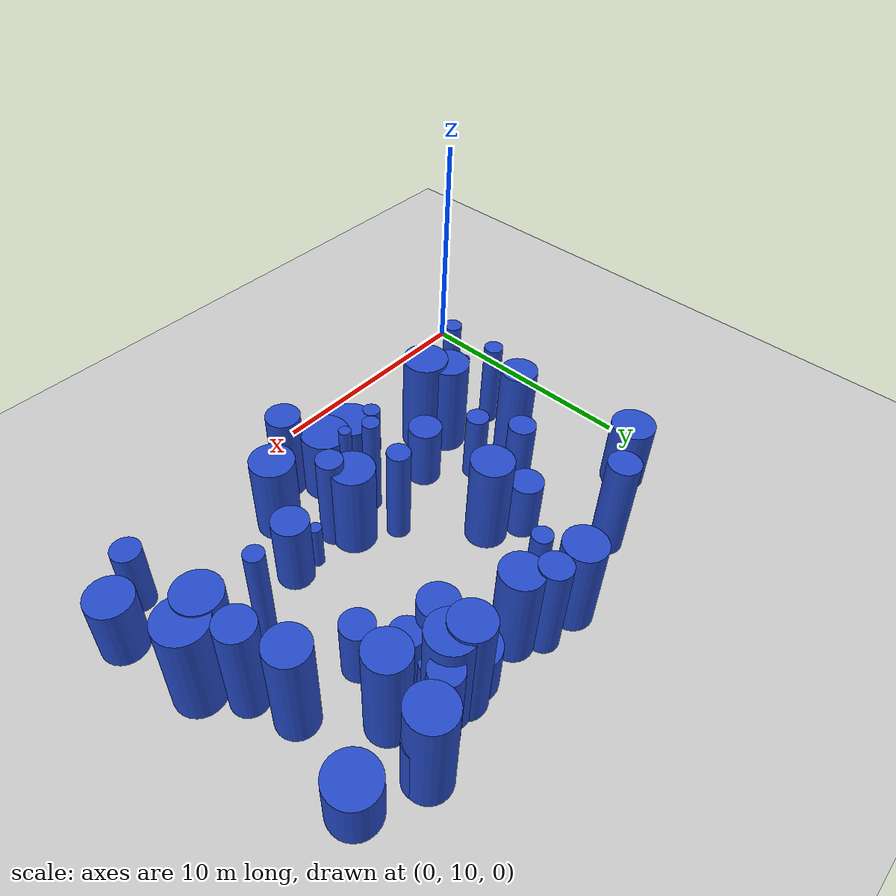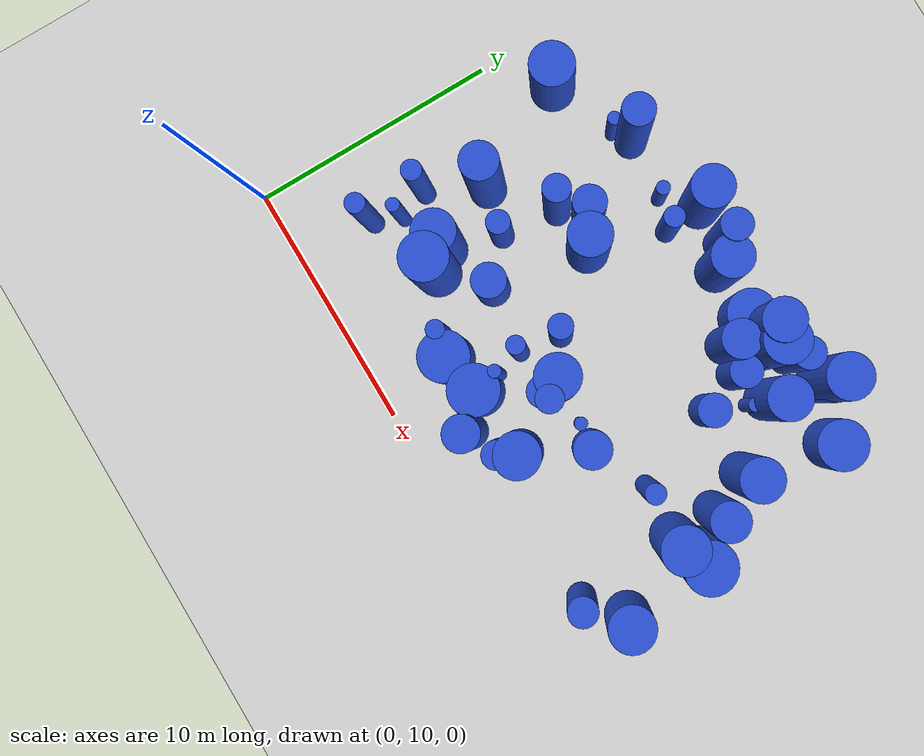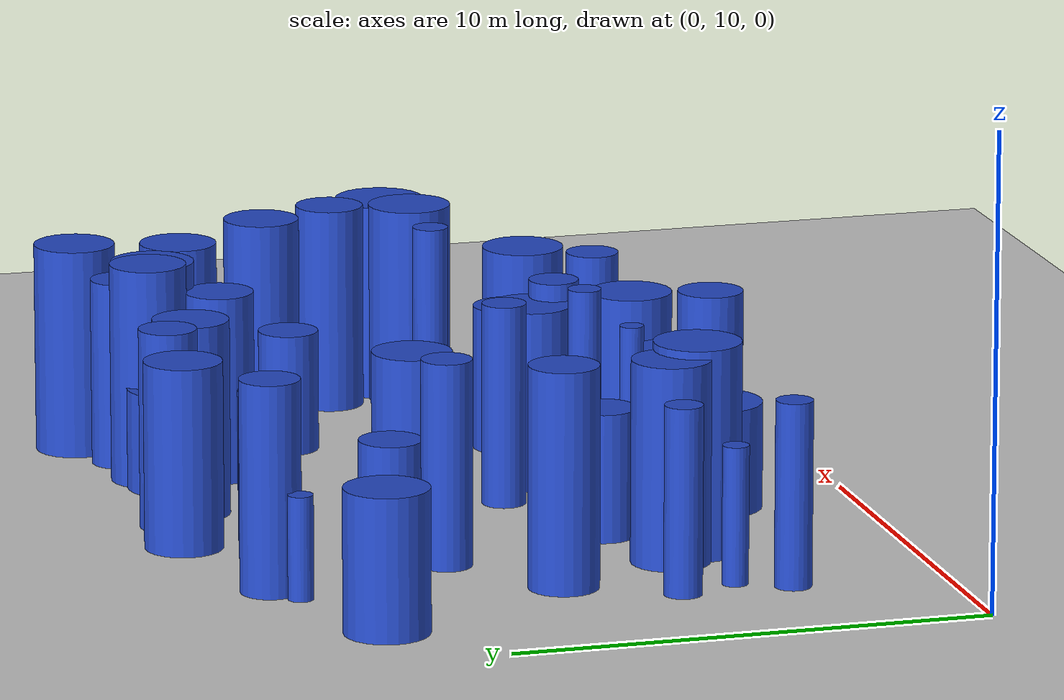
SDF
<sdf version="1.6">
 <world name="default">
  <model name="ground_plane">
   <static>1</static>
   <link name="link">
    <collision name="collision">
     <geometry><plane><normal>0 0 1</normal><size>100 100</size></plane></geometry>
     <surface><friction><ode><mu>100</mu><mu2>50</mu2></ode></friction></surface>
    </collision>
    <visual name="visual">
     <cast_shadows>0</cast_shadows>
     <geometry><plane><normal>0 0 1</normal><size>100 100</size></plane></geometry>
     <material>
      <script><uri>file://media/materials/scripts/gazebo.material</uri><name>Gazebo/Grey</name></script>
     </material>
    </visual>
   </link>
  </model>
  <model name="14">
   <static>0</static>
   <link name="link">
    <inertial>
     <mass>2</mass>
     <inertia>
      <ixx>0.836303</ixx>
      <ixy>0</ixy>
      <ixz>0</ixz>
      <iyy>0.836303</iyy>
      <iyz>0</iyz>
      <izz>0.0702342</izz>
     </inertia>
    </inertial>
    <collision name="collision">
     <geometry><cylinder><length>2.19251</length><radius>0.265017</radius></cylinder></geometry>
     <surface><contact><collide_without_contact>1</collide_without_contact></contact></surface>
    </collision>
    <visual name="visual">
     <geometry><cylinder><length>2.19251</length><radius>0.265017</radius></cylinder></geometry>
     <material>
      <script><uri>file://media/materials/scripts/gazebo.material</uri><name>Gazebo/Blue</name></script>
     </material>
    </visual>
    <gravity>0</gravity>
   </link>
   <pose>4.90241 23.0543 1.09626 0 -0 0</pose>
  </model>
  <model name="32">
   <static>0</static>
   <link name="link">
    <inertial>
     <mass>2</mass>
     <inertia><ixx>3.14804</ixx><ixy>0</ixy><ixz>0</ixz><iyy>3.14804</iyy><iyz>0</iyz><izz>0.2772</izz></inertia>
    </inertial>
    <collision name="collision">
     <geometry><cylinder><length>4.24931</length><radius>0.526498</radius></cylinder></geometry>
     <surface><contact><collide_without_contact>1</collide_without_contact></contact></surface>
    </collision>
    <visual name="visual">
     <geometry><cylinder><length>4.24931</length><radius>0.526498</radius></cylinder></geometry>
     <material>
      <script><uri>file://media/materials/scripts/gazebo.material</uri><name>Gazebo/Blue</name></script>
     </material>
    </visual>
    <gravity>0</gravity>
   </link>
   <pose>12.684 15.5314 2.12466 0 -0 0</pose>
  </model>
  <model name="58">
   <static>0</static>
   <link name="link">
    <inertial>
     <mass>2</mass>
     <inertia><ixx>1.90136</ixx><ixy>0</ixy><ixz>0</ixz><iyy>1.90136</iyy><iyz>0</iyz><izz>0.784577</izz></inertia>
    </inertial>
    <collision name="collision">
     <geometry><cylinder><length>3.00905</length><radius>0.885763</radius></cylinder></geometry>
     <surface><contact><collide_without_contact>1</collide_without_contact></contact></surface>
    </collision>
    <visual name="visual">
     <geometry><cylinder><length>3.00905</length><radius>0.885763</radius></cylinder></geometry>
     <material>
      <script><uri>file://media/materials/scripts/gazebo.material</uri><name>Gazebo/Blue</name></script>
     </material>
    </visual>
    <gravity>0</gravity>
   </link>
   <pose>2.14865 21.9876 1.50453 0 -0 0</pose>
  </model>
  <model name="60">
   <static>0</static>
   <link name="link">
    <inertial>
     <mass>2</mass>
     <inertia><ixx>2.88942</ixx><ixy>0</ixy><ixz>0</ixz><iyy>2.88942</iyy><iyz>0</iyz><izz>0.374804</izz></inertia>
    </inertial>
    <collision name="collision">
     <geometry><cylinder><length>4.02643</length><radius>0.612213</radius></cylinder></geometry>
     <surface><contact><collide_without_contact>1</collide_without_contact></contact></surface>
    </collision>
    <visual name="visual">
     <geometry><cylinder><length>4.02643</length><radius>0.612213</radius></cylinder></geometry>
     <material>
      <script><uri>file://media/materials/scripts/gazebo.material</uri><name>Gazebo/Blue</name></script>
     </material>
    </visual>
    <gravity>0</gravity>
   </link>
   <pose>16.028 24.169 2.01321 0 -0 0</pose>
  </model>
  <model name="69">
   <static>0</static>
   <link name="link">
    <inertial>
     <mass>2</mass>
     <inertia><ixx>3.22963</ixx><ixy>0</ixy><ixz>0</ixz><iyy>3.22963</iyy><iyz>0</iyz><izz>0.217421</izz></inertia>
    </inertial>
    <collision name="collision">
     <geometry><cylinder><length>4.3273</length><radius>0.466285</radius></cylinder></geometry>
     <surface><contact><collide_without_contact>1</collide_without_contact></contact></surface>
    </collision>
    <visual name="visual">
     <geometry><cylinder><length>4.3273</length><radius>0.466285</radius></cylinder></geometry>
     <material>
      <script><uri>file://media/materials/scripts/gazebo.material</uri><name>Gazebo/Blue</name></script>
     </material>
    </visual>
    <gravity>0</gravity>
   </link>
   <pose>10.7285 17.1635 2.16365 0 -0 0</pose>
  </model>
  <model name="83">
   <static>0</static>
   <link name="link">
    <inertial>
     <mass>2</mass>
     <inertia><ixx>3.76364</ixx><ixy>0</ixy><ixz>0</ixz><iyy>3.76364</iyy><iyz>0</iyz><izz>0.745798</izz></inertia>
    </inertial>
    <collision name="collision">
     <geometry><cylinder><length>4.51048</length><radius>0.863596</radius></cylinder></geometry>
     <surface><contact><collide_without_contact>1</collide_without_contact></contact></surface>
    </collision>
    <visual name="visual">
     <geometry><cylinder><length>4.51048</length><radius>0.863596</radius></cylinder></geometry>
     <material>
      <script><uri>file://media/materials/scripts/gazebo.material</uri><name>Gazebo/Blue</name></script>
     </material>
    </visual>
    <gravity>0</gravity>
   </link>
   <pose>17.4087 24.8194 2.25524 0 -0 0</pose>
  </model>
  <model name="86">
   <static>0</static>
   <link name="link">
    <inertial>
     <mass>2</mass>
     <inertia><ixx>1.70084</ixx><ixy>0</ixy><ixz>0</ixz><iyy>1.70084</iyy><iyz>0</iyz><izz>0.217344</izz></inertia>
    </inertial>
    <collision name="collision">
     <geometry><cylinder><length>3.09079</length><radius>0.466202</radius></cylinder></geometry>
     <surface><contact><collide_without_contact>1</collide_without_contact></contact></surface>
    </collision>
    <visual name="visual">
     <geometry><cylinder><length>3.09079</length><radius>0.466202</radius></cylinder></geometry>
     <material>
      <script><uri>file://media/materials/scripts/gazebo.material</uri><name>Gazebo/Blue</name></script>
     </material>
    </visual>
    <gravity>0</gravity>
   </link>
   <pose>6.19283 17.2437 1.5454 0 -0 0</pose>
  </model>
  <model name="88">
   <static>0</static>
   <link name="link">
    <inertial>
     <mass>2</mass>
     <inertia><ixx>2.97237</ixx><ixy>0</ixy><ixz>0</ixz><iyy>2.97237</iyy><iyz>0</iyz><izz>0.674588</izz></inertia>
    </inertial>
    <collision name="collision">
     <geometry><cylinder><length>3.97624</length><radius>0.821333</radius></cylinder></geometry>
     <surface><contact><collide_without_contact>1</collide_without_contact></contact></surface>
    </collision>
    <visual name="visual">
     <geometry><cylinder><length>3.97624</length><radius>0.821333</radius></cylinder></geometry>
     <material>
      <script><uri>file://media/materials/scripts/gazebo.material</uri><name>Gazebo/Blue</name></script>
     </material>
    </visual>
    <gravity>0</gravity>
   </link>
   <pose>9.23452 24.4216 1.98812 0 -0 0</pose>
  </model>
  <model name="108">
   <static>0</static>
   <link name="link">
    <inertial>
     <mass>2</mass>
     <inertia><ixx>2.89097</ixx><ixy>0</ixy><ixz>0</ixz><iyy>2.89097</iyy><iyz>0</iyz><izz>0.769265</izz></inertia>
    </inertial>
    <collision name="collision">
     <geometry><cylinder><length>3.87789</length><radius>0.877078</radius></cylinder></geometry>
     <surface><contact><collide_without_contact>1</collide_without_contact></contact></surface>
    </collision>
    <visual name="visual">
     <geometry><cylinder><length>3.87789</length><radius>0.877078</radius></cylinder></geometry>
     <material>
      <script><uri>file://media/materials/scripts/gazebo.material</uri><name>Gazebo/Blue</name></script>
     </material>
    </visual>
    <gravity>0</gravity>
   </link>
   <pose>12.1664 16.1752 1.93895 0 -0 0</pose>
  </model>
  <model name="111">
   <static>0</static>
   <link name="link">
    <inertial>
     <mass>2</mass>
     <inertia><ixx>1.61305</ixx><ixy>0</ixy><ixz>0</ixz><iyy>1.61305</iyy><iyz>0</iyz><izz>0.331208</izz></inertia>
    </inertial>
    <collision name="collision">
     <geometry><cylinder><length>2.94697</length><radius>0.575506</radius></cylinder></geometry>
     <surface><contact><collide_without_contact>1</collide_without_contact></contact></surface>
    </collision>
    <visual name="visual">
     <geometry><cylinder><length>2.94697</length><radius>0.575506</radius></cylinder></geometry>
     <material>
      <script><uri>file://media/materials/scripts/gazebo.material</uri><name>Gazebo/Blue</name></script>
     </material>
    </visual>
    <gravity>0</gravity>
   </link>
   <pose>19.7444 12.6258 1.47349 0 -0 0</pose>
  </model>
  <model name="121">
   <static>0</static>
   <link name="link">
    <inertial>
     <mass>2</mass>
     <inertia>
      <ixx>0.701249</ixx>
      <ixy>0</ixy>
      <ixz>0</ixz>
      <iyy>0.701249</iyy>
      <iyz>0</iyz>
      <izz>0.0646593</izz>
     </inertia>
    </inertial>
    <collision name="collision">
     <geometry><cylinder><length>2.00338</length><radius>0.254282</radius></cylinder></geometry>
     <surface><contact><collide_without_contact>1</collide_without_contact></contact></surface>
    </collision>
    <visual name="visual">
     <geometry><cylinder><length>2.00338</length><radius>0.254282</radius></cylinder></geometry>
     <material>
      <script><uri>file://media/materials/scripts/gazebo.material</uri><name>Gazebo/Blue</name></script>
     </material>
    </visual>
    <gravity>0</gravity>
   </link>
   <pose>14.0322 16.041 1.00169 0 -0 0</pose>
  </model>
  <model name="143">
   <static>0</static>
   <link name="link">
    <inertial>
     <mass>2</mass>
     <inertia><ixx>2.80765</ixx><ixy>0</ixy><ixz>0</ixz><iyy>2.80765</iyy><iyz>0</iyz><izz>0.487148</izz></inertia>
    </inertial>
    <collision name="collision">
     <geometry><cylinder><length>3.9223</length><radius>0.69796</radius></cylinder></geometry>
     <surface><contact><collide_without_contact>1</collide_without_contact></contact></surface>
    </collision>
    <visual name="visual">
     <geometry><cylinder><length>3.9223</length><radius>0.69796</radius></cylinder></geometry>
     <material>
      <script><uri>file://media/materials/scripts/gazebo.material</uri><name>Gazebo/Blue</name></script>
     </material>
    </visual>
    <gravity>0</gravity>
   </link>
   <pose>12.1102 12.2397 1.96115 0 -0 0</pose>
  </model>
  <model name="150">
   <static>0</static>
   <link name="link">
    <inertial>
     <mass>2</mass>
     <inertia><ixx>3.53297</ixx><ixy>0</ixy><ixz>0</ixz><iyy>3.53297</iyy><iyz>0</iyz><izz>0.946006</izz></inertia>
    </inertial>
    <collision name="collision">
     <geometry><cylinder><length>4.28484</length><radius>0.972629</radius></cylinder></geometry>
     <surface><contact><collide_without_contact>1</collide_without_contact></contact></surface>
    </collision>
    <visual name="visual">
     <geometry><cylinder><length>4.28484</length><radius>0.972629</radius></cylinder></geometry>
     <material>
      <script><uri>file://media/materials/scripts/gazebo.material</uri><name>Gazebo/Blue</name></script>
     </material>
    </visual>
    <gravity>0</gravity>
   </link>
   <pose>20.5094 17.2649 2.14242 0 -0 0</pose>
  </model>
  <model name="161">
   <static>0</static>
   <link name="link">
    <inertial>
     <mass>2</mass>
     <inertia><ixx>4.00763</ixx><ixy>0</ixy><ixz>0</ixz><iyy>4.00763</iyy><iyz>0</iyz><izz>0.65728</izz></inertia>
    </inertial>
    <collision name="collision">
     <geometry><cylinder><length>4.69829</length><radius>0.810728</radius></cylinder></geometry>
     <surface><contact><collide_without_contact>1</collide_without_contact></contact></surface>
    </collision>
    <visual name="visual">
     <geometry><cylinder><length>4.69829</length><radius>0.810728</radius></cylinder></geometry>
     <material>
      <script><uri>file://media/materials/scripts/gazebo.material</uri><name>Gazebo/Blue</name></script>
     </material>
    </visual>
    <gravity>0</gravity>
   </link>
   <pose>14.5574 23.8871 2.34915 0 -0 0</pose>
  </model>
  <model name="168">
   <static>0</static>
   <link name="link">
    <inertial>
     <mass>2</mass>
     <inertia><ixx>1.88036</ixx><ixy>0</ixy><ixz>0</ixz><iyy>1.88036</iyy><iyz>0</iyz><izz>0.387286</izz></inertia>
    </inertial>
    <collision name="collision">
     <geometry><cylinder><length>3.18124</length><radius>0.622323</radius></cylinder></geometry>
     <surface><contact><collide_without_contact>1</collide_without_contact></contact></surface>
    </collision>
    <visual name="visual">
     <geometry><cylinder><length>3.18124</length><radius>0.622323</radius></cylinder></geometry>
     <material>
      <script><uri>file://media/materials/scripts/gazebo.material</uri><name>Gazebo/Blue</name></script>
     </material>
    </visual>
    <gravity>0</gravity>
   </link>
   <pose>15.4862 22.0829 1.59062 0 -0 0</pose>
  </model>
  <model name="173">
   <static>0</static>
   <link name="link">
    <inertial>
     <mass>2</mass>
     <inertia><ixx>3.90189</ixx><ixy>0</ixy><ixz>0</ixz><iyy>3.90189</iyy><iyz>0</iyz><izz>0.540275</izz></inertia>
    </inertial>
    <collision name="collision">
     <geometry><cylinder><length>4.66803</length><radius>0.735034</radius></cylinder></geometry>
     <surface><contact><collide_without_contact>1</collide_without_contact></contact></surface>
    </collision>
    <visual name="visual">
     <geometry><cylinder><length>4.66803</length><radius>0.735034</radius></cylinder></geometry>
     <material>
      <script><uri>file://media/materials/scripts/gazebo.material</uri><name>Gazebo/Blue</name></script>
     </material>
    </visual>
    <gravity>0</gravity>
   </link>
   <pose>4.30772 17.7082 2.33402 0 -0 0</pose>
  </model>
  <model name="177">
   <static>0</static>
   <link name="link">
    <inertial>
     <mass>2</mass>
     <inertia><ixx>0.95271</ixx><ixy>0</ixy><ixz>0</ixz><iyy>0.95271</iyy><iyz>0</iyz><izz>0.135392</izz></inertia>
    </inertial>
    <collision name="collision">
     <geometry><cylinder><length>2.30436</length><radius>0.367956</radius></cylinder></geometry>
     <surface><contact><collide_without_contact>1</collide_without_contact></contact></surface>
    </collision>
    <visual name="visual">
     <geometry><cylinder><length>2.30436</length><radius>0.367956</radius></cylinder></geometry>
     <material>
      <script><uri>file://media/materials/scripts/gazebo.material</uri><name>Gazebo/Blue</name></script>
     </material>
    </visual>
    <gravity>0</gravity>
   </link>
   <pose>8.26384 13.2308 1.15218 0 -0 0</pose>
  </model>
  <model name="179">
   <static>0</static>
   <link name="link">
    <inertial>
     <mass>2</mass>
     <inertia><ixx>1.22891</ixx><ixy>0</ixy><ixz>0</ixz><iyy>1.22891</iyy><iyz>0</iyz><izz>0.890975</izz></inertia>
    </inertial>
    <collision name="collision">
     <geometry><cylinder><length>2.16807</length><radius>0.943915</radius></cylinder></geometry>
     <surface><contact><collide_without_contact>1</collide_without_contact></contact></surface>
    </collision>
    <visual name="visual">
     <geometry><cylinder><length>2.16807</length><radius>0.943915</radius></cylinder></geometry>
     <material>
      <script><uri>file://media/materials/scripts/gazebo.material</uri><name>Gazebo/Blue</name></script>
     </material>
    </visual>
    <gravity>0</gravity>
   </link>
   <pose>13.8206 23.5763 1.08403 0 -0 0</pose>
  </model>
  <model name="184">
   <static>0</static>
   <link name="link">
    <inertial>
     <mass>2</mass>
     <inertia><ixx>1.34764</ixx><ixy>0</ixy><ixz>0</ixz><iyy>1.34764</iyy><iyz>0</iyz><izz>0.412127</izz></inertia>
    </inertial>
    <collision name="collision">
     <geometry><cylinder><length>2.61714</length><radius>0.641971</radius></cylinder></geometry>
     <surface><contact><collide_without_contact>1</collide_without_contact></contact></surface>
    </collision>
    <visual name="visual">
     <geometry><cylinder><length>2.61714</length><radius>0.641971</radius></cylinder></geometry>
     <material>
      <script><uri>file://media/materials/scripts/gazebo.material</uri><name>Gazebo/Blue</name></script>
     </material>
    </visual>
    <gravity>0</gravity>
   </link>
   <pose>16.1297 20.4453 1.30857 0 -0 0</pose>
  </model>
  <model name="185">
   <static>0</static>
   <link name="link">
    <inertial>
     <mass>2</mass>
     <inertia><ixx>2.98915</ixx><ixy>0</ixy><ixz>0</ixz><iyy>2.98915</iyy><iyz>0</iyz><izz>0.538537</izz></inertia>
    </inertial>
    <collision name="collision">
     <geometry><cylinder><length>4.03971</length><radius>0.73385</radius></cylinder></geometry>
     <surface><contact><collide_without_contact>1</collide_without_contact></contact></surface>
    </collision>
    <visual name="visual">
     <geometry><cylinder><length>4.03971</length><radius>0.73385</radius></cylinder></geometry>
     <material>
      <script><uri>file://media/materials/scripts/gazebo.material</uri><name>Gazebo/Blue</name></script>
     </material>
    </visual>
    <gravity>0</gravity>
   </link>
   <pose>14.375 22.3936 2.01986 0 -0 0</pose>
  </model>
  <model name="189">
   <static>0</static>
   <link name="link">
    <inertial>
     <mass>2</mass>
     <inertia><ixx>2.52915</ixx><ixy>0</ixy><ixz>0</ixz><iyy>2.52915</iyy><iyz>0</iyz><izz>0.784996</izz></inertia>
    </inertial>
    <collision name="collision">
     <geometry><cylinder><length>3.58049</length><radius>0.886</radius></cylinder></geometry>
     <surface><contact><collide_without_contact>1</collide_without_contact></contact></surface>
    </collision>
    <visual name="visual">
     <geometry><cylinder><length>3.58049</length><radius>0.886</radius></cylinder></geometry>
     <material>
      <script><uri>file://media/materials/scripts/gazebo.material</uri><name>Gazebo/Blue</name></script>
     </material>
    </visual>
    <gravity>0</gravity>
   </link>
   <pose>13.7865 13.5097 1.79025 0 -0 0</pose>
  </model>
  <model name="194">
   <static>0</static>
   <link name="link">
    <inertial>
     <mass>2</mass>
     <inertia><ixx>3.51472</ixx><ixy>0</ixy><ixz>0</ixz><iyy>3.51472</iyy><iyz>0</iyz><izz>0.397602</izz></inertia>
    </inertial>
    <collision name="collision">
     <geometry><cylinder><length>4.46044</length><radius>0.630557</radius></cylinder></geometry>
     <surface><contact><collide_without_contact>1</collide_without_contact></contact></surface>
    </collision>
    <visual name="visual">
     <geometry><cylinder><length>4.46044</length><radius>0.630557</radius></cylinder></geometry>
     <material>
      <script><uri>file://media/materials/scripts/gazebo.material</uri><name>Gazebo/Blue</name></script>
     </material>
    </visual>
    <gravity>0</gravity>
   </link>
   <pose>5.59986 23.5037 2.23022 0 -0 0</pose>
  </model>
  <model name="210">
   <static>0</static>
   <link name="link">
    <inertial>
     <mass>2</mass>
     <inertia><ixx>1.78793</ixx><ixy>0</ixy><ixz>0</ixz><iyy>1.78793</iyy><iyz>0</iyz><izz>0.167015</izz></inertia>
    </inertial>
    <collision name="collision">
     <geometry><cylinder><length>3.1979</length><radius>0.408674</radius></cylinder></geometry>
     <surface><contact><collide_without_contact>1</collide_without_contact></contact></surface>
    </collision>
    <visual name="visual">
     <geometry><cylinder><length>3.1979</length><radius>0.408674</radius></cylinder></geometry>
     <material>
      <script><uri>file://media/materials/scripts/gazebo.material</uri><name>Gazebo/Blue</name></script>
     </material>
    </visual>
    <gravity>0</gravity>
   </link>
   <pose>9.36745 22.8219 1.59895 0 -0 0</pose>
  </model>
  <model name="218">
   <static>0</static>
   <link name="link">
    <inertial>
     <mass>2</mass>
     <inertia><ixx>3.32031</ixx><ixy>0</ixy><ixz>0</ixz><iyy>3.32031</iyy><iyz>0</iyz><izz>0.28159</izz></inertia>
    </inertial>
    <collision name="collision">
     <geometry><cylinder><length>4.36773</length><radius>0.530651</radius></cylinder></geometry>
     <surface><contact><collide_without_contact>1</collide_without_contact></contact></surface>
    </collision>
    <visual name="visual">
     <geometry><cylinder><length>4.36773</length><radius>0.530651</radius></cylinder></geometry>
     <material>
      <script><uri>file://media/materials/scripts/gazebo.material</uri><name>Gazebo/Blue</name></script>
     </material>
    </visual>
    <gravity>0</gravity>
   </link>
   <pose>6.48457 19.5668 2.18387 0 -0 0</pose>
  </model>
  <model name="232">
   <static>0</static>
   <link name="link">
    <inertial>
     <mass>2</mass>
     <inertia><ixx>3.41433</ixx><ixy>0</ixy><ixz>0</ixz><iyy>3.41433</iyy><iyz>0</iyz><izz>0.690269</izz></inertia>
    </inertial>
    <collision name="collision">
     <geometry><cylinder><length>4.29129</length><radius>0.830824</radius></cylinder></geometry>
     <surface><contact><collide_without_contact>1</collide_without_contact></contact></surface>
    </collision>
    <visual name="visual">
     <geometry><cylinder><length>4.29129</length><radius>0.830824</radius></cylinder></geometry>
     <material>
      <script><uri>file://media/materials/scripts/gazebo.material</uri><name>Gazebo/Blue</name></script>
     </material>
    </visual>
    <gravity>0</gravity>
   </link>
   <pose>5.53066 15.0773 2.14565 0 -0 0</pose>
  </model>
  <model name="236">
   <static>0</static>
   <link name="link">
    <inertial>
     <mass>2</mass>
     <inertia><ixx>3.5821</ixx><ixy>0</ixy><ixz>0</ixz><iyy>3.5821</iyy><iyz>0</iyz><izz>0.659814</izz></inertia>
    </inertial>
    <collision name="collision">
     <geometry><cylinder><length>4.41737</length><radius>0.812289</radius></cylinder></geometry>
     <surface><contact><collide_without_contact>1</collide_without_contact></contact></surface>
    </collision>
    <visual name="visual">
     <geometry><cylinder><length>4.41737</length><radius>0.812289</radius></cylinder></geometry>
     <material>
      <script><uri>file://media/materials/scripts/gazebo.material</uri><name>Gazebo/Blue</name></script>
     </material>
    </visual>
    <gravity>0</gravity>
   </link>
   <pose>18.8726 20.3437 2.20868 0 -0 0</pose>
  </model>
  <model name="239">
   <static>0</static>
   <link name="link">
    <inertial>
     <mass>2</mass>
     <inertia><ixx>2.08851</ixx><ixy>0</ixy><ixz>0</ixz><iyy>2.08851</iyy><iyz>0</iyz><izz>0.364489</izz></inertia>
    </inertial>
    <collision name="collision">
     <geometry><cylinder><length>3.38195</length><radius>0.603729</radius></cylinder></geometry>
     <surface><contact><collide_without_contact>1</collide_without_contact></contact></surface>
    </collision>
    <visual name="visual">
     <geometry><cylinder><length>3.38195</length><radius>0.603729</radius></cylinder></geometry>
     <material>
      <script><uri>file://media/materials/scripts/gazebo.material</uri><name>Gazebo/Blue</name></script>
     </material>
    </visual>
    <gravity>0</gravity>
   </link>
   <pose>12.3231 15.4519 1.69098 0 -0 0</pose>
  </model>
  <model name="240">
   <static>0</static>
   <link name="link">
    <inertial>
     <mass>2</mass>
     <inertia><ixx>1.48257</ixx><ixy>0</ixy><ixz>0</ixz><iyy>1.48257</iyy><iyz>0</iyz><izz>0.465862</izz></inertia>
    </inertial>
    <collision name="collision">
     <geometry><cylinder><length>2.73821</length><radius>0.682541</radius></cylinder></geometry>
     <surface><contact><collide_without_contact>1</collide_without_contact></contact></surface>
    </collision>
    <visual name="visual">
     <geometry><cylinder><length>2.73821</length><radius>0.682541</radius></cylinder></geometry>
     <material>
      <script><uri>file://media/materials/scripts/gazebo.material</uri><name>Gazebo/Blue</name></script>
     </material>
    </visual>
    <gravity>0</gravity>
   </link>
   <pose>7.79968 15.8538 1.36911 0 -0 0</pose>
  </model>
  <model name="241">
   <static>0</static>
   <link name="link">
    <inertial>
     <mass>2</mass>
     <inertia><ixx>3.19417</ixx><ixy>0</ixy><ixz>0</ixz><iyy>3.19417</iyy><iyz>0</iyz><izz>0.372242</izz></inertia>
    </inertial>
    <collision name="collision">
     <geometry><cylinder><length>4.24833</length><radius>0.610117</radius></cylinder></geometry>
     <surface><contact><collide_without_contact>1</collide_without_contact></contact></surface>
    </collision>
    <visual name="visual">
     <geometry><cylinder><length>4.24833</length><radius>0.610117</radius></cylinder></geometry>
     <material>
      <script><uri>file://media/materials/scripts/gazebo.material</uri><name>Gazebo/Blue</name></script>
     </material>
    </visual>
    <gravity>0</gravity>
   </link>
   <pose>10.8543 24.3498 2.12416 0 -0 0</pose>
  </model>
  <model name="242">
   <static>0</static>
   <link name="link">
    <inertial>
     <mass>2</mass>
     <inertia><ixx>3.55214</ixx><ixy>0</ixy><ixz>0</ixz><iyy>3.55214</iyy><iyz>0</iyz><izz>0.122529</izz></inertia>
    </inertial>
    <collision name="collision">
     <geometry><cylinder><length>4.5766</length><radius>0.350041</radius></cylinder></geometry>
     <surface><contact><collide_without_contact>1</collide_without_contact></contact></surface>
    </collision>
    <visual name="visual">
     <geometry><cylinder><length>4.5766</length><radius>0.350041</radius></cylinder></geometry>
     <material>
      <script><uri>file://media/materials/scripts/gazebo.material</uri><name>Gazebo/Blue</name></script>
     </material>
    </visual>
    <gravity>0</gravity>
   </link>
   <pose>10.4906 15.4859 2.2883 0 -0 0</pose>
  </model>
  <model name="251">
   <static>0</static>
   <link name="link">
    <inertial>
     <mass>2</mass>
     <inertia>
      <ixx>2.22055</ixx>
      <ixy>0</ixy>
      <ixz>0</ixz>
      <iyy>2.22055</iyy>
      <iyz>0</iyz>
      <izz>0.0647104</izz>
     </inertia>
    </inertial>
    <collision name="collision">
     <geometry><cylinder><length>3.62342</length><radius>0.254382</radius></cylinder></geometry>
     <surface><contact><collide_without_contact>1</collide_without_contact></contact></surface>
    </collision>
    <visual name="visual">
     <geometry><cylinder><length>3.62342</length><radius>0.254382</radius></cylinder></geometry>
     <material>
      <script><uri>file://media/materials/scripts/gazebo.material</uri><name>Gazebo/Blue</name></script>
     </material>
    </visual>
    <gravity>0</gravity>
   </link>
   <pose>10.815 14.3595 1.81171 0 -0 0</pose>
  </model>
  <model name="257">
   <static>0</static>
   <link name="link">
    <inertial>
     <mass>2</mass>
     <inertia><ixx>3.0853</ixx><ixy>0</ixy><ixz>0</ixz><iyy>3.0853</iyy><iyz>0</iyz><izz>0.704995</izz></inertia>
    </inertial>
    <collision name="collision">
     <geometry><cylinder><length>4.04929</length><radius>0.83964</radius></cylinder></geometry>
     <surface><contact><collide_without_contact>1</collide_without_contact></contact></surface>
    </collision>
    <visual name="visual">
     <geometry><cylinder><length>4.04929</length><radius>0.83964</radius></cylinder></geometry>
     <material>
      <script><uri>file://media/materials/scripts/gazebo.material</uri><name>Gazebo/Blue</name></script>
     </material>
    </visual>
    <gravity>0</gravity>
   </link>
   <pose>8.45555 19.7697 2.02465 0 -0 0</pose>
  </model>
  <model name="267">
   <static>0</static>
   <link name="link">
    <inertial>
     <mass>2</mass>
     <inertia><ixx>1.28925</ixx><ixy>0</ixy><ixz>0</ixz><iyy>1.28925</iyy><iyz>0</iyz><izz>0.944616</izz></inertia>
    </inertial>
    <collision name="collision">
     <geometry><cylinder><length>2.21397</length><radius>0.971913</radius></cylinder></geometry>
     <surface><contact><collide_without_contact>1</collide_without_contact></contact></surface>
    </collision>
    <visual name="visual">
     <geometry><cylinder><length>2.21397</length><radius>0.971913</radius></cylinder></geometry>
     <material>
      <script><uri>file://media/materials/scripts/gazebo.material</uri><name>Gazebo/Blue</name></script>
     </material>
    </visual>
    <gravity>0</gravity>
   </link>
   <pose>19.6874 23.8575 1.10698 0 -0 0</pose>
  </model>
  <model name="290">
   <static>0</static>
   <link name="link">
    <inertial>
     <mass>2</mass>
     <inertia><ixx>3.24824</ixx><ixy>0</ixy><ixz>0</ixz><iyy>3.24824</iyy><iyz>0</iyz><izz>0.1463</izz></inertia>
    </inertial>
    <collision name="collision">
     <geometry><cylinder><length>4.36469</length><radius>0.382492</radius></cylinder></geometry>
     <surface><contact><collide_without_contact>1</collide_without_contact></contact></surface>
    </collision>
    <visual name="visual">
     <geometry><cylinder><length>4.36469</length><radius>0.382492</radius></cylinder></geometry>
     <material>
      <script><uri>file://media/materials/scripts/gazebo.material</uri><name>Gazebo/Blue</name></script>
     </material>
    </visual>
    <gravity>0</gravity>
   </link>
   <pose>17.3647 16.9581 2.18235 0 -0 0</pose>
  </model>
  <model name="291">
   <static>0</static>
   <link name="link">
    <inertial>
     <mass>2</mass>
     <inertia><ixx>2.62756</ixx><ixy>0</ixy><ixz>0</ixz><iyy>2.62756</iyy><iyz>0</iyz><izz>0.149384</izz></inertia>
    </inertial>
    <collision name="collision">
     <geometry><cylinder><length>3.91372</length><radius>0.386502</radius></cylinder></geometry>
     <surface><contact><collide_without_contact>1</collide_without_contact></contact></surface>
    </collision>
    <visual name="visual">
     <geometry><cylinder><length>3.91372</length><radius>0.386502</radius></cylinder></geometry>
     <material>
      <script><uri>file://media/materials/scripts/gazebo.material</uri><name>Gazebo/Blue</name></script>
     </material>
    </visual>
    <gravity>0</gravity>
   </link>
   <pose>3.13047 13.2023 1.95686 0 -0 0</pose>
  </model>
  <model name="314">
   <static>0</static>
   <link name="link">
    <inertial>
     <mass>2</mass>
     <inertia><ixx>3.55892</ixx><ixy>0</ixy><ixz>0</ixz><iyy>3.55892</iyy><iyz>0</iyz><izz>0.800275</izz></inertia>
    </inertial>
    <collision name="collision">
     <geometry><cylinder><length>4.35347</length><radius>0.894581</radius></cylinder></geometry>
     <surface><contact><collide_without_contact>1</collide_without_contact></contact></surface>
    </collision>
    <visual name="visual">
     <geometry><cylinder><length>4.35347</length><radius>0.894581</radius></cylinder></geometry>
     <material>
      <script><uri>file://media/materials/scripts/gazebo.material</uri><name>Gazebo/Blue</name></script>
     </material>
    </visual>
    <gravity>0</gravity>
   </link>
   <pose>19.5537 16.844 2.17673 0 -0 0</pose>
  </model>
  <model name="318">
   <static>0</static>
   <link name="link">
    <inertial>
     <mass>2</mass>
     <inertia>
      <ixx>1.46174</ixx>
      <ixy>0</ixy>
      <ixz>0</ixz>
      <iyy>1.46174</iyy>
      <iyz>0</iyz>
      <izz>0.0749336</izz>
     </inertia>
    </inertial>
    <collision name="collision">
     <geometry><cylinder><length>2.92329</length><radius>0.27374</radius></cylinder></geometry>
     <surface><contact><collide_without_contact>1</collide_without_contact></contact></surface>
    </collision>
    <visual name="visual">
     <geometry><cylinder><length>2.92329</length><radius>0.27374</radius></cylinder></geometry>
     <material>
      <script><uri>file://media/materials/scripts/gazebo.material</uri><name>Gazebo/Blue</name></script>
     </material>
    </visual>
    <gravity>0</gravity>
   </link>
   <pose>3.61179 14.2858 1.46164 0 -0 0</pose>
  </model>
  <model name="322">
   <static>0</static>
   <link name="link">
    <inertial>
     <mass>2</mass>
     <inertia><ixx>1.97244</ixx><ixy>0</ixy><ixz>0</ixz><iyy>1.97244</iyy><iyz>0</iyz><izz>0.979031</izz></inertia>
    </inertial>
    <collision name="collision">
     <geometry><cylinder><length>2.98288</length><radius>0.98946</radius></cylinder></geometry>
     <surface><contact><collide_without_contact>1</collide_without_contact></contact></surface>
    </collision>
    <visual name="visual">
     <geometry><cylinder><length>2.98288</length><radius>0.98946</radius></cylinder></geometry>
     <material>
      <script><uri>file://media/materials/scripts/gazebo.material</uri><name>Gazebo/Blue</name></script>
     </material>
    </visual>
    <gravity>0</gravity>
   </link>
   <pose>10.9676 13.3379 1.49144 0 -0 0</pose>
  </model>
  <model name="362">
   <static>0</static>
   <link name="link">
    <inertial>
     <mass>2</mass>
     <inertia>
      <ixx>0.827385</ixx>
      <ixy>0</ixy>
      <ixz>0</ixz>
      <iyy>0.827385</iyy>
      <iyz>0</iyz>
      <izz>0.0742829</izz>
     </inertia>
    </inertial>
    <collision name="collision">
     <geometry><cylinder><length>2.17749</length><radius>0.272549</radius></cylinder></geometry>
     <surface><contact><collide_without_contact>1</collide_without_contact></contact></surface>
    </collision>
    <visual name="visual">
     <geometry><cylinder><length>2.17749</length><radius>0.272549</radius></cylinder></geometry>
     <material>
      <script><uri>file://media/materials/scripts/gazebo.material</uri><name>Gazebo/Blue</name></script>
     </material>
    </visual>
    <gravity>0</gravity>
   </link>
   <pose>16.7681 21.8928 1.08874 0 -0 0</pose>
  </model>
  <model name="366">
   <static>0</static>
   <link name="link">
    <inertial>
     <mass>2</mass>
     <inertia>
      <ixx>0.806267</ixx>
      <ixy>0</ixy>
      <ixz>0</ixz>
      <iyy>0.806267</iyy>
      <iyz>0</iyz>
      <izz>0.0705688</izz>
     </inertia>
    </inertial>
    <collision name="collision">
     <geometry><cylinder><length>2.15079</length><radius>0.265648</radius></cylinder></geometry>
     <surface><contact><collide_without_contact>1</collide_without_contact></contact></surface>
    </collision>
    <visual name="visual">
     <geometry><cylinder><length>2.15079</length><radius>0.265648</radius></cylinder></geometry>
     <material>
      <script><uri>file://media/materials/scripts/gazebo.material</uri><name>Gazebo/Blue</name></script>
     </material>
    </visual>
    <gravity>0</gravity>
   </link>
   <pose>19.9533 24.0549 1.07539 0 -0 0</pose>
  </model>
  <model name="372">
   <static>0</static>
   <link name="link">
    <inertial>
     <mass>2</mass>
     <inertia><ixx>1.43992</ixx><ixy>0</ixy><ixz>0</ixz><iyy>1.43992</iyy><iyz>0</iyz><izz>0.467893</izz></inertia>
    </inertial>
    <collision name="collision">
     <geometry><cylinder><length>2.68995</length><radius>0.684027</radius></cylinder></geometry>
     <surface><contact><collide_without_contact>1</collide_without_contact></contact></surface>
    </collision>
    <visual name="visual">
     <geometry><cylinder><length>2.68995</length><radius>0.684027</radius></cylinder></geometry>
     <material>
      <script><uri>file://media/materials/scripts/gazebo.material</uri><name>Gazebo/Blue</name></script>
     </material>
    </visual>
    <gravity>0</gravity>
   </link>
   <pose>17.5973 24.7162 1.34498 0 -0 0</pose>
  </model>
  <model name="375">
   <static>0</static>
   <link name="link">
    <inertial>
     <mass>2</mass>
     <inertia><ixx>3.23791</ixx><ixy>0</ixy><ixz>0</ixz><iyy>3.23791</iyy><iyz>0</iyz><izz>0.656062</izz></inertia>
    </inertial>
    <collision name="collision">
     <geometry><cylinder><length>4.17843</length><radius>0.809976</radius></cylinder></geometry>
     <surface><contact><collide_without_contact>1</collide_without_contact></contact></surface>
    </collision>
    <visual name="visual">
     <geometry><cylinder><length>4.17843</length><radius>0.809976</radius></cylinder></geometry>
     <material>
      <script><uri>file://media/materials/scripts/gazebo.material</uri><name>Gazebo/Blue</name></script>
     </material>
    </visual>
    <gravity>0</gravity>
   </link>
   <pose>11.7338 23.651 2.08922 0 -0 0</pose>
  </model>
  <model name="381">
   <static>0</static>
   <link name="link">
    <inertial>
     <mass>2</mass>
     <inertia><ixx>3.57821</ixx><ixy>0</ixy><ixz>0</ixz><iyy>3.57821</iyy><iyz>0</iyz><izz>0.531463</izz></inertia>
    </inertial>
    <collision name="collision">
     <geometry><cylinder><length>4.45812</length><radius>0.729015</radius></cylinder></geometry>
     <surface><contact><collide_without_contact>1</collide_without_contact></contact></surface>
    </collision>
    <visual name="visual">
     <geometry><cylinder><length>4.45812</length><radius>0.729015</radius></cylinder></geometry>
     <material>
      <script><uri>file://media/materials/scripts/gazebo.material</uri><name>Gazebo/Blue</name></script>
     </material>
    </visual>
    <gravity>0</gravity>
   </link>
   <pose>19.5 18.6573 2.22906 0 -0 0</pose>
  </model>
  <model name="387">
   <static>0</static>
   <link name="link">
    <inertial>
     <mass>2</mass>
     <inertia><ixx>1.8939</ixx><ixy>0</ixy><ixz>0</ixz><iyy>1.8939</iyy><iyz>0</iyz><izz>0.522387</izz></inertia>
    </inertial>
    <collision name="collision">
     <geometry><cylinder><length>3.12989</length><radius>0.722763</radius></cylinder></geometry>
     <surface><contact><collide_without_contact>1</collide_without_contact></contact></surface>
    </collision>
    <visual name="visual">
     <geometry><cylinder><length>3.12989</length><radius>0.722763</radius></cylinder></geometry>
     <material>
      <script><uri>file://media/materials/scripts/gazebo.material</uri><name>Gazebo/Blue</name></script>
     </material>
    </visual>
    <gravity>0</gravity>
   </link>
   <pose>15.0244 15.9023 1.56495 0 -0 0</pose>
  </model>
  <model name="404">
   <static>0</static>
   <link name="link">
    <inertial>
     <mass>2</mass>
     <inertia><ixx>3.74315</ixx><ixy>0</ixy><ixz>0</ixz><iyy>3.74315</iyy><iyz>0</iyz><izz>0.845685</izz></inertia>
    </inertial>
    <collision name="collision">
     <geometry><cylinder><length>4.46339</length><radius>0.919611</radius></cylinder></geometry>
     <surface><contact><collide_without_contact>1</collide_without_contact></contact></surface>
    </collision>
    <visual name="visual">
     <geometry><cylinder><length>4.46339</length><radius>0.919611</radius></cylinder></geometry>
     <material>
      <script><uri>file://media/materials/scripts/gazebo.material</uri><name>Gazebo/Blue</name></script>
     </material>
    </visual>
    <gravity>0</gravity>
   </link>
   <pose>6.15693 14.3319 2.23169 0 -0 0</pose>
  </model>
  <model name="410">
   <static>0</static>
   <link name="link">
    <inertial>
     <mass>2</mass>
     <inertia><ixx>1.71126</ixx><ixy>0</ixy><ixz>0</ixz><iyy>1.71126</iyy><iyz>0</iyz><izz>0.80391</izz></inertia>
    </inertial>
    <collision name="collision">
     <geometry><cylinder><length>2.80282</length><radius>0.89661</radius></cylinder></geometry>
     <surface><contact><collide_without_contact>1</collide_without_contact></contact></surface>
    </collision>
    <visual name="visual">
     <geometry><cylinder><length>2.80282</length><radius>0.89661</radius></cylinder></geometry>
     <material>
      <script><uri>file://media/materials/scripts/gazebo.material</uri><name>Gazebo/Blue</name></script>
     </material>
    </visual>
    <gravity>0</gravity>
   </link>
   <pose>21.2045 13.8028 1.40141 0 -0 0</pose>
  </model>
  <model name="414">
   <static>0</static>
   <link name="link">
    <inertial>
     <mass>2</mass>
     <inertia><ixx>3.88619</ixx><ixy>0</ixy><ixz>0</ixz><iyy>3.88619</iyy><iyz>0</iyz><izz>0.785027</izz></inertia>
    </inertial>
    <collision name="collision">
     <geometry><cylinder><length>4.57844</length><radius>0.886017</radius></cylinder></geometry>
     <surface><contact><collide_without_contact>1</collide_without_contact></contact></surface>
    </collision>
    <visual name="visual">
     <geometry><cylinder><length>4.57844</length><radius>0.886017</radius></cylinder></geometry>
     <material>
      <script><uri>file://media/materials/scripts/gazebo.material</uri><name>Gazebo/Blue</name></script>
     </material>
    </visual>
    <gravity>0</gravity>
   </link>
   <pose>15.2103 23.6349 2.28922 0 -0 0</pose>
  </model>
  <model name="425">
   <static>0</static>
   <link name="link">
    <inertial>
     <mass>2</mass>
     <inertia>
      <ixx>0.859908</ixx>
      <ixy>0</ixy>
      <ixz>0</ixz>
      <iyy>0.859908</iyy>
      <iyz>0</iyz>
      <izz>0.200446</izz>
     </inertia>
    </inertial>
    <collision name="collision">
     <geometry><cylinder><length>2.13497</length><radius>0.447712</radius></cylinder></geometry>
     <surface><contact><collide_without_contact>1</collide_without_contact></contact></surface>
    </collision>
    <visual name="visual">
     <geometry><cylinder><length>2.13497</length><radius>0.447712</radius></cylinder></geometry>
     <material>
      <script><uri>file://media/materials/scripts/gazebo.material</uri><name>Gazebo/Blue</name></script>
     </material>
    </visual>
    <gravity>0</gravity>
   </link>
   <pose>11.3646 12.7877 1.06749 0 -0 0</pose>
  </model>
  <model name="430">
   <static>0</static>
   <link name="link">
    <inertial>
     <mass>2</mass>
     <inertia><ixx>0.7773</ixx><ixy>0</ixy><ixz>0</ixz><iyy>0.7773</iyy><iyz>0</iyz><izz>0.0775338</izz></inertia>
    </inertial>
    <collision name="collision">
     <geometry><cylinder><length>2.10504</length><radius>0.278449</radius></cylinder></geometry>
     <surface><contact><collide_without_contact>1</collide_without_contact></contact></surface>
    </collision>
    <visual name="visual">
     <geometry><cylinder><length>2.10504</length><radius>0.278449</radius></cylinder></geometry>
     <material>
      <script><uri>file://media/materials/scripts/gazebo.material</uri><name>Gazebo/Blue</name></script>
     </material>
    </visual>
    <gravity>0</gravity>
   </link>
   <pose>8.09765 23.255 1.05252 0 -0 0</pose>
  </model>
  <model name="444">
   <static>0</static>
   <link name="link">
    <inertial>
     <mass>2</mass>
     <inertia><ixx>1.31034</ixx><ixy>0</ixy><ixz>0</ixz><iyy>1.31034</iyy><iyz>0</iyz><izz>0.442815</izz></inertia>
    </inertial>
    <collision name="collision">
     <geometry><cylinder><length>2.55609</length><radius>0.665444</radius></cylinder></geometry>
     <surface><contact><collide_without_contact>1</collide_without_contact></contact></surface>
    </collision>
    <visual name="visual">
     <geometry><cylinder><length>2.55609</length><radius>0.665444</radius></cylinder></geometry>
     <material>
      <script><uri>file://media/materials/scripts/gazebo.material</uri><name>Gazebo/Blue</name></script>
     </material>
    </visual>
    <gravity>0</gravity>
   </link>
   <pose>7.19744 20.5629 1.27805 0 -0 0</pose>
  </model>
  <model name="451">
   <static>0</static>
   <link name="link">
    <inertial>
     <mass>2</mass>
     <inertia><ixx>1.11749</ixx><ixy>0</ixy><ixz>0</ixz><iyy>1.11749</iyy><iyz>0</iyz><izz>0.468378</izz></inertia>
    </inertial>
    <collision name="collision">
     <geometry><cylinder><length>2.30213</length><radius>0.684382</radius></cylinder></geometry>
     <surface><contact><collide_without_contact>1</collide_without_contact></contact></surface>
    </collision>
    <visual name="visual">
     <geometry><cylinder><length>2.30213</length><radius>0.684382</radius></cylinder></geometry>
     <material>
      <script><uri>file://media/materials/scripts/gazebo.material</uri><name>Gazebo/Blue</name></script>
     </material>
    </visual>
    <gravity>0</gravity>
   </link>
   <pose>15.1594 23.1742 1.15106 0 -0 0</pose>
  </model>
  <model name="474">
   <static>0</static>
   <link name="link">
    <inertial>
     <mass>2</mass>
     <inertia><ixx>3.69734</ixx><ixy>0</ixy><ixz>0</ixz><iyy>3.69734</iyy><iyz>0</iyz><izz>0.673666</izz></inertia>
    </inertial>
    <collision name="collision">
     <geometry><cylinder><length>4.49033</length><radius>0.820772</radius></cylinder></geometry>
     <surface><contact><collide_without_contact>1</collide_without_contact></contact></surface>
    </collision>
    <visual name="visual">
     <geometry><cylinder><length>4.49033</length><radius>0.820772</radius></cylinder></geometry>
     <material>
      <script><uri>file://media/materials/scripts/gazebo.material</uri><name>Gazebo/Blue</name></script>
     </material>
    </visual>
    <gravity>0</gravity>
   </link>
   <pose>16.9738 22.6485 2.24517 0 -0 0</pose>
  </model>
  <model name="475">
   <static>0</static>
   <link name="link">
    <inertial>
     <mass>2</mass>
     <inertia><ixx>1.36864</ixx><ixy>0</ixy><ixz>0</ixz><iyy>1.36864</iyy><iyz>0</iyz><izz>0.997215</izz></inertia>
    </inertial>
    <collision name="collision">
     <geometry><cylinder><length>2.28477</length><radius>0.998606</radius></cylinder></geometry>
     <surface><contact><collide_without_contact>1</collide_without_contact></contact></surface>
    </collision>
    <visual name="visual">
     <geometry><cylinder><length>2.28477</length><radius>0.998606</radius></cylinder></geometry>
     <material>
      <script><uri>file://media/materials/scripts/gazebo.material</uri><name>Gazebo/Blue</name></script>
     </material>
    </visual>
    <gravity>0</gravity>
   </link>
   <pose>9.28253 12.9882 1.14238 0 -0 0</pose>
  </model>
  <model name="489">
   <static>0</static>
   <link name="link">
    <inertial>
     <mass>2</mass>
     <inertia><ixx>2.70635</ixx><ixy>0</ixy><ixz>0</ixz><iyy>2.70635</iyy><iyz>0</iyz><izz>0.157214</izz></inertia>
    </inertial>
    <collision name="collision">
     <geometry><cylinder><length>3.9707</length><radius>0.396502</radius></cylinder></geometry>
     <surface><contact><collide_without_contact>1</collide_without_contact></contact></surface>
    </collision>
    <visual name="visual">
     <geometry><cylinder><length>3.9707</length><radius>0.396502</radius></cylinder></geometry>
     <material>
      <script><uri>file://media/materials/scripts/gazebo.material</uri><name>Gazebo/Blue</name></script>
     </material>
    </visual>
    <gravity>0</gravity>
   </link>
   <pose>3.16633 15.5236 1.98535 0 -0 0</pose>
  </model>
  <model name="498">
   <static>0</static>
   <link name="link">
    <inertial>
     <mass>2</mass>
     <inertia><ixx>1.21357</ixx><ixy>0</ixy><ixz>0</ixz><iyy>1.21357</iyy><iyz>0</iyz><izz>0.310148</izz></inertia>
    </inertial>
    <collision name="collision">
     <geometry><cylinder><length>2.52012</length><radius>0.556909</radius></cylinder></geometry>
     <surface><contact><collide_without_contact>1</collide_without_contact></contact></surface>
    </collision>
    <visual name="visual">
     <geometry><cylinder><length>2.52012</length><radius>0.556909</radius></cylinder></geometry>
     <material>
      <script><uri>file://media/materials/scripts/gazebo.material</uri><name>Gazebo/Blue</name></script>
     </material>
    </visual>
    <gravity>0</gravity>
   </link>
   <pose>13.3818 12.7967 1.26006 0 -0 0</pose>
  </model>
 </world>
</sdf>
